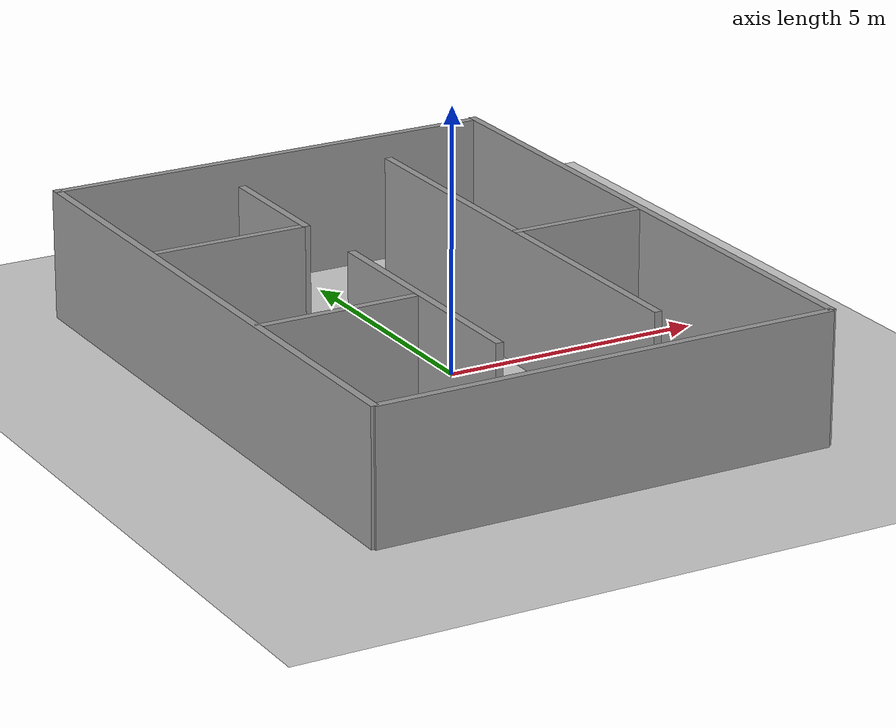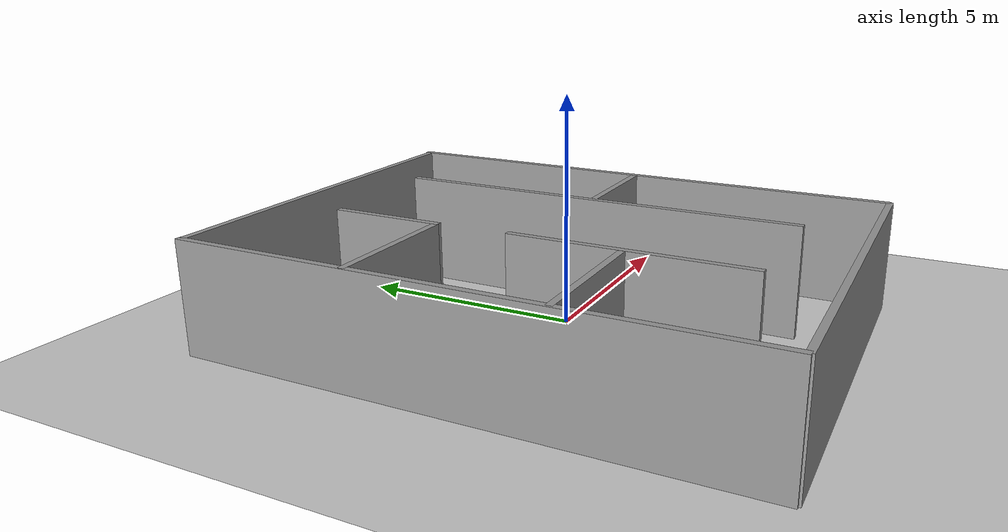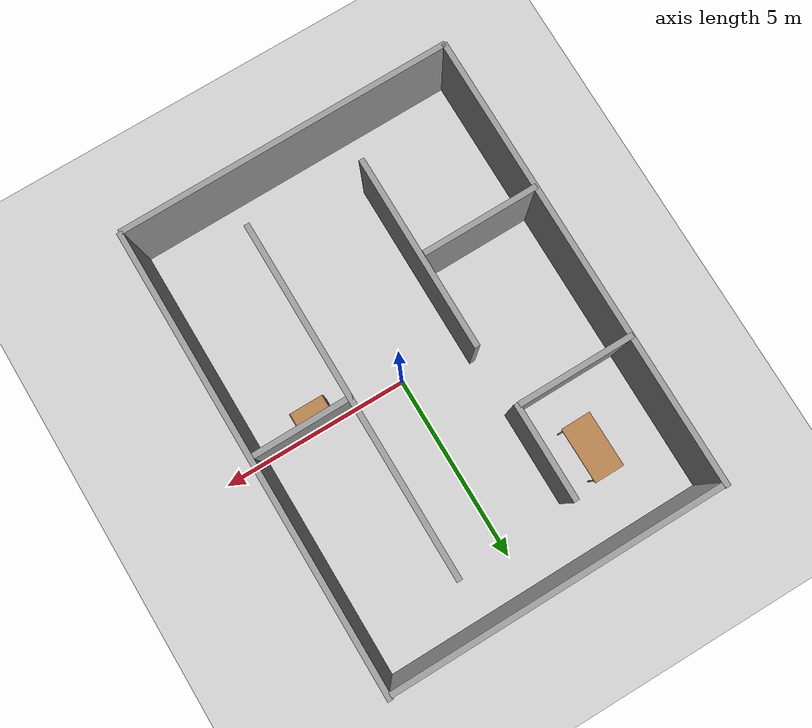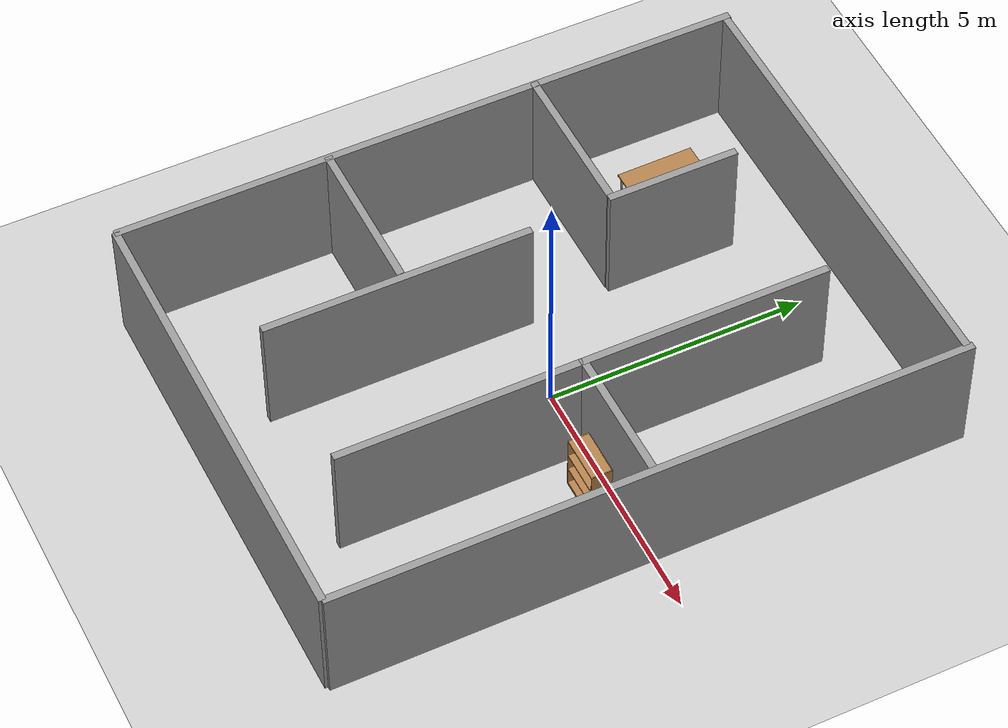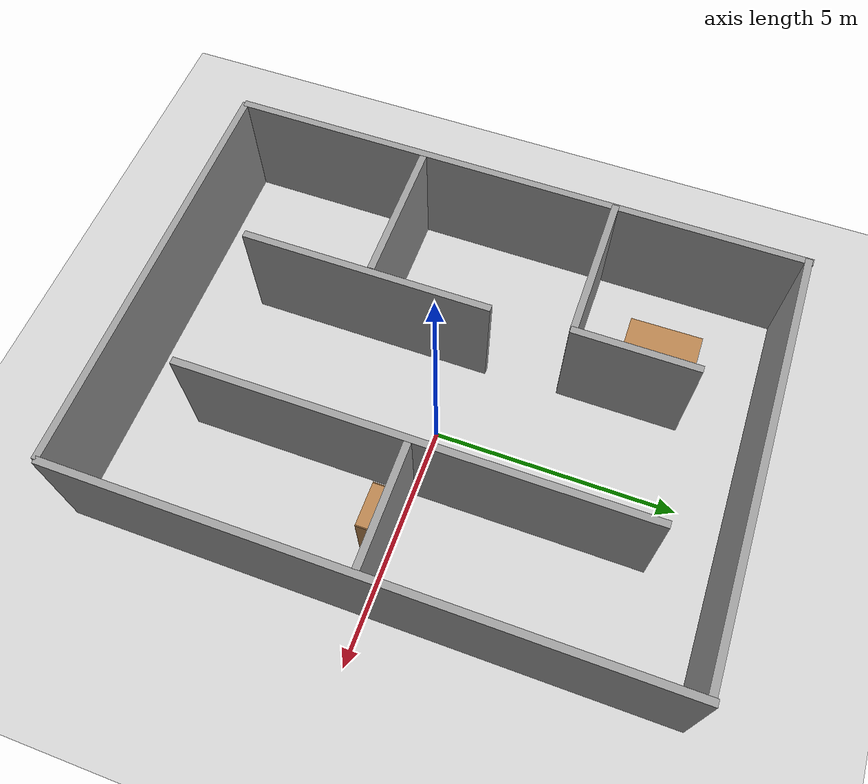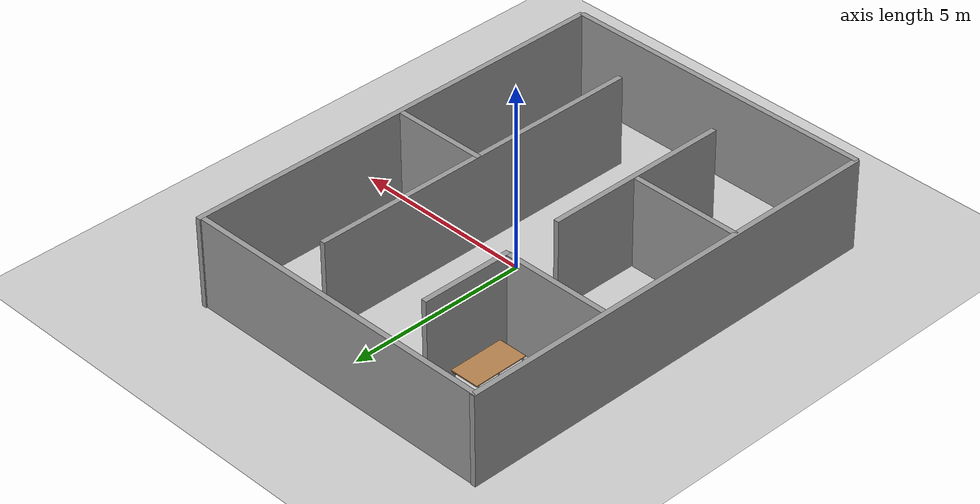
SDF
<sdf version="1.7">
 <world name="default">
  <light name="sun" type="directional">
   <pose>0 0 10 0 -0 0</pose>
   <diffuse>0.8 0.8 0.8 1</diffuse>
   <specular>0.2 0.2 0.2 1</specular>
   <attenuation>
    <range>1000</range>
    <constant>0.9</constant>
    <linear>0.01</linear>
    <quadratic>0.001</quadratic>
   </attenuation>
   <direction>-0.5 0.1 -0.9</direction>
   <spot><inner_angle>0</inner_angle><outer_angle>0</outer_angle><falloff>0</falloff></spot>
  </light>
  <model name="ground_plane">
   <static>1</static>
   <link name="link">
    <collision name="collision">
     <geometry><plane><normal>0 0 1</normal><size>100 100</size></plane></geometry>
     <surface>
      <contact><collide_bitmask>65535</collide_bitmask></contact>
      <friction><ode><mu>100</mu><mu2>50</mu2></ode></friction>
     </surface>
    </collision>
    <visual name="visual">
     <cast_shadows>0</cast_shadows>
     <geometry><plane><normal>0 0 1</normal><size>100 100</size></plane></geometry>
     <material>
      <script><uri>file://media/materials/scripts/gazebo.material</uri><name>Gazebo/Grey</name></script>
     </material>
    </visual>
   </link>
  </model>
  <gravity>0 0 -9.8</gravity>
  <magnetic_field>6e-06 2.3e-05 -4.2e-05</magnetic_field>
  <atmosphere type="adiabatic"/>
  <physics type="ode">
   <max_step_size>0.001</max_step_size>
   <real_time_factor>1</real_time_factor>
   <real_time_update_rate>1000</real_time_update_rate>
  </physics>
  <scene><ambient>0.4 0.4 0.4 1</ambient><background>0.7 0.7 0.7 1</background><shadows>1</shadows></scene>
  <spherical_coordinates>
   <surface_model>EARTH_WGS84</surface_model>
   <latitude_deg>0</latitude_deg>
   <longitude_deg>0</longitude_deg>
   <elevation>0</elevation>
   <heading_deg>0</heading_deg>
  </spherical_coordinates>
  <model name="building_with_room">
   <link name="link">
    <inertial>
     <mass>4.4494</mass>
     <inertia><ixx>57.3504</ixx><ixy>0</ixy><ixz>0</ixz><iyy>2.28295</iyy><iyz>0</iyz><izz>55.0835</izz></inertia>
    </inertial>
    <pose>1.60322 -0.623475 0.7452 0 -0 0</pose>
    <visual name="visual">
     <geometry><box><size>0.14733 12.1876 2.47697</size></box></geometry>
     <material>
      <script><name>Gazebo/Grey</name><uri>file://media/materials/scripts/gazebo.material</uri></script>
      <shader type="pixel"/>
     </material>
    </visual>
    <collision name="collision">
     <geometry><box><size>0.14733 12.1876 2.47697</size></box></geometry>
     <surface>
      <friction>
       <ode><mu>1</mu><mu2>1</mu2><fdir1>0 0 0</fdir1><slip1>0</slip1><slip2>0</slip2></ode>
       <torsional>
        <coefficient>1</coefficient>
        <patch_radius>0</patch_radius>
        <surface_radius>0</surface_radius>
        <use_patch_radius>1</use_patch_radius>
        <ode><slip>0</slip></ode>
       </torsional>
      </friction>
      <bounce><restitution_coefficient>0</restitution_coefficient><threshold>1e+06</threshold></bounce>
      <contact>
       <collide_without_contact>0</collide_without_contact>
       <collide_without_contact_bitmask>1</collide_without_contact_bitmask>
       <collide_bitmask>1</collide_bitmask>
       <ode>
        <soft_cfm>0</soft_cfm>
        <soft_erp>0.2</soft_erp>
        <kp>1e+13</kp>
        <kd>1</kd>
        <max_vel>0.01</max_vel>
        <min_depth>0</min_depth>
       </ode>
       <bullet>
        <split_impulse>1</split_impulse>
        <split_impulse_penetration_threshold>-0.01</split_impulse_penetration_threshold>
        <soft_cfm>0</soft_cfm>
        <soft_erp>0.2</soft_erp>
        <kp>1e+13</kp>
        <kd>1</kd>
       </bullet>
      </contact>
     </surface>
    </collision>
   </link>
   <link name="link_clone">
    <inertial>
     <mass>4.4494</mass>
     <inertia><ixx>57.3504</ixx><ixy>0</ixy><ixz>0</ixz><iyy>2.28295</iyy><iyz>0</iyz><izz>55.0835</izz></inertia>
    </inertial>
    <pose>-7.1934 -0.686715 0.7452 0 -0 0</pose>
    <visual name="visual">
     <geometry><box><size>0.14733 12.1876 2.47697</size></box></geometry>
     <material>
      <script><name>Gazebo/Grey</name><uri>file://media/materials/scripts/gazebo.material</uri></script>
      <shader type="pixel"/>
     </material>
    </visual>
    <collision name="collision">
     <geometry><box><size>0.14733 12.1876 2.47697</size></box></geometry>
     <surface>
      <friction>
       <ode><mu>1</mu><mu2>1</mu2><fdir1>0 0 0</fdir1><slip1>0</slip1><slip2>0</slip2></ode>
       <torsional>
        <coefficient>1</coefficient>
        <patch_radius>0</patch_radius>
        <surface_radius>0</surface_radius>
        <use_patch_radius>1</use_patch_radius>
        <ode><slip>0</slip></ode>
       </torsional>
      </friction>
      <bounce><restitution_coefficient>0</restitution_coefficient><threshold>1e+06</threshold></bounce>
      <contact>
       <collide_without_contact>0</collide_without_contact>
       <collide_without_contact_bitmask>1</collide_without_contact_bitmask>
       <collide_bitmask>1</collide_bitmask>
       <ode>
        <soft_cfm>0</soft_cfm>
        <soft_erp>0.2</soft_erp>
        <kp>1e+13</kp>
        <kd>1</kd>
        <max_vel>0.01</max_vel>
        <min_depth>0</min_depth>
       </ode>
       <bullet>
        <split_impulse>1</split_impulse>
        <split_impulse_penetration_threshold>-0.01</split_impulse_penetration_threshold>
        <soft_cfm>0</soft_cfm>
        <soft_erp>0.2</soft_erp>
        <kp>1e+13</kp>
        <kd>1</kd>
       </bullet>
      </contact>
     </surface>
    </collision>
   </link>
   <link name="link_clone_0">
    <inertial>
     <mass>3.21667</mass>
     <inertia><ixx>22.4546</ixx><ixy>0</ixy><ixz>0</ixz><iyy>1.65044</iyy><iyz>0</iyz><izz>20.8158</izz></inertia>
    </inertial>
    <pose>-2.84698 5.33919 0.7452 -0 -0 -1.5653</pose>
    <visual name="visual">
     <geometry><box><size>0.14733 8.81096 2.47697</size></box></geometry>
     <material>
      <script><name>Gazebo/Grey</name><uri>file://media/materials/scripts/gazebo.material</uri></script>
      <shader type="pixel"/>
     </material>
    </visual>
    <collision name="collision">
     <geometry><box><size>0.14733 8.81096 2.47697</size></box></geometry>
     <surface>
      <friction>
       <ode><mu>1</mu><mu2>1</mu2><fdir1>0 0 0</fdir1><slip1>0</slip1><slip2>0</slip2></ode>
       <torsional>
        <coefficient>1</coefficient>
        <patch_radius>0</patch_radius>
        <surface_radius>0</surface_radius>
        <use_patch_radius>1</use_patch_radius>
        <ode><slip>0</slip></ode>
       </torsional>
      </friction>
      <bounce><restitution_coefficient>0</restitution_coefficient><threshold>1e+06</threshold></bounce>
      <contact>
       <collide_without_contact>0</collide_without_contact>
       <collide_without_contact_bitmask>1</collide_without_contact_bitmask>
       <collide_bitmask>1</collide_bitmask>
       <ode>
        <soft_cfm>0</soft_cfm>
        <soft_erp>0.2</soft_erp>
        <kp>1e+13</kp>
        <kd>1</kd>
        <max_vel>0.01</max_vel>
        <min_depth>0</min_depth>
       </ode>
       <bullet>
        <split_impulse>1</split_impulse>
        <split_impulse_penetration_threshold>-0.01</split_impulse_penetration_threshold>
        <soft_cfm>0</soft_cfm>
        <soft_erp>0.2</soft_erp>
        <kp>1e+13</kp>
        <kd>1</kd>
       </bullet>
      </contact>
     </surface>
    </collision>
   </link>
   <link name="link_clone_0_clone">
    <inertial>
     <mass>3.21667</mass>
     <inertia><ixx>22.4546</ixx><ixy>0</ixy><ixz>0</ixz><iyy>1.65044</iyy><iyz>0</iyz><izz>20.8158</izz></inertia>
    </inertial>
    <pose>-2.80375 -6.72739 0.7452 -0 -0 -1.5653</pose>
    <visual name="visual">
     <geometry><box><size>0.14733 8.81096 2.47697</size></box></geometry>
     <material>
      <script><name>Gazebo/Grey</name><uri>file://media/materials/scripts/gazebo.material</uri></script>
      <shader type="pixel"/>
     </material>
    </visual>
    <collision name="collision">
     <geometry><box><size>0.14733 8.81096 2.47697</size></box></geometry>
     <surface>
      <friction>
       <ode><mu>1</mu><mu2>1</mu2><fdir1>0 0 0</fdir1><slip1>0</slip1><slip2>0</slip2></ode>
       <torsional>
        <coefficient>1</coefficient>
        <patch_radius>0</patch_radius>
        <surface_radius>0</surface_radius>
        <use_patch_radius>1</use_patch_radius>
        <ode><slip>0</slip></ode>
       </torsional>
      </friction>
      <bounce><restitution_coefficient>0</restitution_coefficient><threshold>1e+06</threshold></bounce>
      <contact>
       <collide_without_contact>0</collide_without_contact>
       <collide_without_contact_bitmask>1</collide_without_contact_bitmask>
       <collide_bitmask>1</collide_bitmask>
       <ode>
        <soft_cfm>0</soft_cfm>
        <soft_erp>0.2</soft_erp>
        <kp>1e+13</kp>
        <kd>1</kd>
        <max_vel>0.01</max_vel>
        <min_depth>0</min_depth>
       </ode>
       <bullet>
        <split_impulse>1</split_impulse>
        <split_impulse_penetration_threshold>-0.01</split_impulse_penetration_threshold>
        <soft_cfm>0</soft_cfm>
        <soft_erp>0.2</soft_erp>
        <kp>1e+13</kp>
        <kd>1</kd>
       </bullet>
      </contact>
     </surface>
    </collision>
   </link>
   <link name="link_clone_0_clone_0">
    <inertial>
     <mass>1.11906</mass>
     <inertia>
      <ixx>1.44837</ixx>
      <ixy>0</ixy>
      <ixz>0</ixz>
      <iyy>0.574178</iyy>
      <iyz>0</iyz>
      <izz>0.878239</izz>
     </inertia>
    </inertial>
    <pose>-5.70758 1.42749 0.7452 -0 -0 -1.5653</pose>
    <visual name="visual">
     <geometry><box><size>0.14733 3.06528 2.47697</size></box></geometry>
     <material>
      <script><name>Gazebo/Grey</name><uri>file://media/materials/scripts/gazebo.material</uri></script>
      <shader type="pixel"/>
     </material>
    </visual>
    <collision name="collision">
     <geometry><box><size>0.14733 3.06528 2.47697</size></box></geometry>
     <surface>
      <friction>
       <ode><mu>1</mu><mu2>1</mu2><fdir1>0 0 0</fdir1><slip1>0</slip1><slip2>0</slip2></ode>
       <torsional>
        <coefficient>1</coefficient>
        <patch_radius>0</patch_radius>
        <surface_radius>0</surface_radius>
        <use_patch_radius>1</use_patch_radius>
        <ode><slip>0</slip></ode>
       </torsional>
      </friction>
      <bounce><restitution_coefficient>0</restitution_coefficient><threshold>1e+06</threshold></bounce>
      <contact>
       <collide_without_contact>0</collide_without_contact>
       <collide_without_contact_bitmask>1</collide_without_contact_bitmask>
       <collide_bitmask>1</collide_bitmask>
       <ode>
        <soft_cfm>0</soft_cfm>
        <soft_erp>0.2</soft_erp>
        <kp>1e+13</kp>
        <kd>1</kd>
        <max_vel>0.01</max_vel>
        <min_depth>0</min_depth>
       </ode>
       <bullet>
        <split_impulse>1</split_impulse>
        <split_impulse_penetration_threshold>-0.01</split_impulse_penetration_threshold>
        <soft_cfm>0</soft_cfm>
        <soft_erp>0.2</soft_erp>
        <kp>1e+13</kp>
        <kd>1</kd>
       </bullet>
      </contact>
     </surface>
    </collision>
   </link>
   <link name="link_clone_0_clone_0_clone">
    <inertial>
     <mass>1.11906</mass>
     <inertia>
      <ixx>1.44837</ixx>
      <ixy>0</ixy>
      <ixz>0</ixz>
      <iyy>0.574178</iyy>
      <iyz>0</iyz>
      <izz>0.878239</izz>
     </inertia>
    </inertial>
    <pose>-5.68036 -2.66691 0.7452 -0 -0 -1.5653</pose>
    <visual name="visual">
     <geometry><box><size>0.14733 3.06528 2.47697</size></box></geometry>
     <material>
      <script><name>Gazebo/Grey</name><uri>file://media/materials/scripts/gazebo.material</uri></script>
      <shader type="pixel"/>
     </material>
    </visual>
    <collision name="collision">
     <geometry><box><size>0.14733 3.06528 2.47697</size></box></geometry>
     <surface>
      <friction>
       <ode><mu>1</mu><mu2>1</mu2><fdir1>0 0 0</fdir1><slip1>0</slip1><slip2>0</slip2></ode>
       <torsional>
        <coefficient>1</coefficient>
        <patch_radius>0</patch_radius>
        <surface_radius>0</surface_radius>
        <use_patch_radius>1</use_patch_radius>
        <ode><slip>0</slip></ode>
       </torsional>
      </friction>
      <bounce><restitution_coefficient>0</restitution_coefficient><threshold>1e+06</threshold></bounce>
      <contact>
       <collide_without_contact>0</collide_without_contact>
       <collide_without_contact_bitmask>1</collide_without_contact_bitmask>
       <collide_bitmask>1</collide_bitmask>
       <ode>
        <soft_cfm>0</soft_cfm>
        <soft_erp>0.2</soft_erp>
        <kp>1e+13</kp>
        <kd>1</kd>
        <max_vel>0.01</max_vel>
        <min_depth>0</min_depth>
       </ode>
       <bullet>
        <split_impulse>1</split_impulse>
        <split_impulse_penetration_threshold>-0.01</split_impulse_penetration_threshold>
        <soft_cfm>0</soft_cfm>
        <soft_erp>0.2</soft_erp>
        <kp>1e+13</kp>
        <kd>1</kd>
       </bullet>
      </contact>
     </surface>
    </collision>
   </link>
   <link name="link_clone_0_clone_0_clone_0">
    <inertial>
     <mass>0.951816</mass>
     <inertia><ixx>1.0258</ixx><ixy>0</ixy><ixz>0</ixz><iyy>0.488368</iyy><iyz>0</iyz><izz>0.540874</izz></inertia>
    </inertial>
    <pose>0.232008 -0.66673 0.7452 -0 -0 -1.5653</pose>
    <visual name="visual">
     <geometry><box><size>0.14733 2.60717 2.47697</size></box></geometry>
     <material>
      <script><name>Gazebo/Grey</name><uri>file://media/materials/scripts/gazebo.material</uri></script>
      <shader type="pixel"/>
     </material>
    </visual>
    <collision name="collision">
     <geometry><box><size>0.14733 2.60717 2.47697</size></box></geometry>
     <surface>
      <friction>
       <ode><mu>1</mu><mu2>1</mu2><fdir1>0 0 0</fdir1><slip1>0</slip1><slip2>0</slip2></ode>
       <torsional>
        <coefficient>1</coefficient>
        <patch_radius>0</patch_radius>
        <surface_radius>0</surface_radius>
        <use_patch_radius>1</use_patch_radius>
        <ode><slip>0</slip></ode>
       </torsional>
      </friction>
      <bounce><restitution_coefficient>0</restitution_coefficient><threshold>1e+06</threshold></bounce>
      <contact>
       <collide_without_contact>0</collide_without_contact>
       <collide_without_contact_bitmask>1</collide_without_contact_bitmask>
       <collide_bitmask>1</collide_bitmask>
       <ode>
        <soft_cfm>0</soft_cfm>
        <soft_erp>0.2</soft_erp>
        <kp>1e+13</kp>
        <kd>1</kd>
        <max_vel>0.01</max_vel>
        <min_depth>0</min_depth>
       </ode>
       <bullet>
        <split_impulse>1</split_impulse>
        <split_impulse_penetration_threshold>-0.01</split_impulse_penetration_threshold>
        <soft_cfm>0</soft_cfm>
        <soft_erp>0.2</soft_erp>
        <kp>1e+13</kp>
        <kd>1</kd>
       </bullet>
      </contact>
     </surface>
    </collision>
   </link>
   <link name="link_clone_1">
    <inertial>
     <mass>3.44638</mass>
     <inertia><ixx>27.3563</ixx><ixy>0</ixy><ixz>0</ixz><iyy>1.76831</iyy><iyz>0</iyz><izz>25.6004</izz></inertia>
    </inertial>
    <pose>-1.00353 -0.645568 0.7452 0 -0 0</pose>
    <visual name="visual">
     <geometry><box><size>0.14733 9.44017 2.47697</size></box></geometry>
     <material>
      <script><name>Gazebo/Grey</name><uri>file://media/materials/scripts/gazebo.material</uri></script>
      <shader type="pixel"/>
     </material>
    </visual>
    <collision name="collision">
     <geometry><box><size>0.14733 9.44017 2.47697</size></box></geometry>
     <surface>
      <friction>
       <ode><mu>1</mu><mu2>1</mu2><fdir1>0 0 0</fdir1><slip1>0</slip1><slip2>0</slip2></ode>
       <torsional>
        <coefficient>1</coefficient>
        <patch_radius>0</patch_radius>
        <surface_radius>0</surface_radius>
        <use_patch_radius>1</use_patch_radius>
        <ode><slip>0</slip></ode>
       </torsional>
      </friction>
      <bounce><restitution_coefficient>0</restitution_coefficient><threshold>1e+06</threshold></bounce>
      <contact>
       <collide_without_contact>0</collide_without_contact>
       <collide_without_contact_bitmask>1</collide_without_contact_bitmask>
       <collide_bitmask>1</collide_bitmask>
       <ode>
        <soft_cfm>0</soft_cfm>
        <soft_erp>0.2</soft_erp>
        <kp>1e+13</kp>
        <kd>1</kd>
        <max_vel>0.01</max_vel>
        <min_depth>0</min_depth>
       </ode>
       <bullet>
        <split_impulse>1</split_impulse>
        <split_impulse_penetration_threshold>-0.01</split_impulse_penetration_threshold>
        <soft_cfm>0</soft_cfm>
        <soft_erp>0.2</soft_erp>
        <kp>1e+13</kp>
        <kd>1</kd>
       </bullet>
      </contact>
     </surface>
    </collision>
   </link>
   <link name="link_clone_2">
    <inertial>
     <mass>1.88613</mass>
     <inertia><ixx>5.1597</ixx><ixy>0</ixy><ixz>0</ixz><iyy>0.967758</iyy><iyz>0</iyz><izz>4.19877</izz></inertia>
    </inertial>
    <pose>-4.06648 -2.75169 0.7452 0 -0 0</pose>
    <visual name="visual">
     <geometry><box><size>0.14733 5.16641 2.47697</size></box></geometry>
     <material>
      <script><name>Gazebo/Grey</name><uri>file://media/materials/scripts/gazebo.material</uri></script>
      <shader type="pixel"/>
     </material>
    </visual>
    <collision name="collision">
     <geometry><box><size>0.14733 5.16641 2.47697</size></box></geometry>
     <surface>
      <friction>
       <ode><mu>1</mu><mu2>1</mu2><fdir1>0 0 0</fdir1><slip1>0</slip1><slip2>0</slip2></ode>
       <torsional>
        <coefficient>1</coefficient>
        <patch_radius>0</patch_radius>
        <surface_radius>0</surface_radius>
        <use_patch_radius>1</use_patch_radius>
        <ode><slip>0</slip></ode>
       </torsional>
      </friction>
      <bounce><restitution_coefficient>0</restitution_coefficient><threshold>1e+06</threshold></bounce>
      <contact>
       <collide_without_contact>0</collide_without_contact>
       <collide_without_contact_bitmask>1</collide_without_contact_bitmask>
       <collide_bitmask>1</collide_bitmask>
       <ode>
        <soft_cfm>0</soft_cfm>
        <soft_erp>0.2</soft_erp>
        <kp>1e+13</kp>
        <kd>1</kd>
        <max_vel>0.01</max_vel>
        <min_depth>0</min_depth>
       </ode>
       <bullet>
        <split_impulse>1</split_impulse>
        <split_impulse_penetration_threshold>-0.01</split_impulse_penetration_threshold>
        <soft_cfm>0</soft_cfm>
        <soft_erp>0.2</soft_erp>
        <kp>1e+13</kp>
        <kd>1</kd>
       </bullet>
      </contact>
     </surface>
    </collision>
   </link>
   <link name="link_clone_3">
    <inertial>
     <mass>0.931837</mass>
     <inertia>
      <ixx>0.982341</ixx>
      <ixy>0</ixy>
      <ixz>0</ixz>
      <iyy>0.478117</iyy>
      <iyz>0</iyz>
      <izz>0.507595</izz>
     </inertia>
    </inertial>
    <pose>-4.13915 2.65366 0.7452 0 -0 0</pose>
    <visual name="visual">
     <geometry><box><size>0.14733 2.55245 2.47697</size></box></geometry>
     <material>
      <script><name>Gazebo/Grey</name><uri>file://media/materials/scripts/gazebo.material</uri></script>
      <shader type="pixel"/>
     </material>
    </visual>
    <collision name="collision">
     <geometry><box><size>0.14733 2.55245 2.47697</size></box></geometry>
     <surface>
      <friction>
       <ode><mu>1</mu><mu2>1</mu2><fdir1>0 0 0</fdir1><slip1>0</slip1><slip2>0</slip2></ode>
       <torsional>
        <coefficient>1</coefficient>
        <patch_radius>0</patch_radius>
        <surface_radius>0</surface_radius>
        <use_patch_radius>1</use_patch_radius>
        <ode><slip>0</slip></ode>
       </torsional>
      </friction>
      <bounce><restitution_coefficient>0</restitution_coefficient><threshold>1e+06</threshold></bounce>
      <contact>
       <collide_without_contact>0</collide_without_contact>
       <collide_without_contact_bitmask>1</collide_without_contact_bitmask>
       <collide_bitmask>1</collide_bitmask>
       <ode>
        <soft_cfm>0</soft_cfm>
        <soft_erp>0.2</soft_erp>
        <kp>1e+13</kp>
        <kd>1</kd>
        <max_vel>0.01</max_vel>
        <min_depth>0</min_depth>
       </ode>
       <bullet>
        <split_impulse>1</split_impulse>
        <split_impulse_penetration_threshold>-0.01</split_impulse_penetration_threshold>
        <soft_cfm>0</soft_cfm>
        <soft_erp>0.2</soft_erp>
        <kp>1e+13</kp>
        <kd>1</kd>
       </bullet>
      </contact>
     </surface>
    </collision>
   </link>
   <static>0</static>
   <pose>2.3139 0.64761 0.5 0 -0 0</pose>
  </model>
  <model name="table">
   <static>1</static>
   <link name="link">
    <collision name="surface">
     <pose>0 0 1 0 -0 0</pose>
     <geometry><box><size>1.5 0.8 0.03</size></box></geometry>
     <surface><friction><ode><mu>0.6</mu><mu2>0.6</mu2></ode></friction></surface>
    </collision>
    <visual name="visual1">
     <pose>0 0 1 0 -0 0</pose>
     <geometry><box><size>1.5 0.8 0.03</size></box></geometry>
     <material>
      <script><uri>file://media/materials/scripts/gazebo.material</uri><name>Gazebo/Wood</name></script>
     </material>
    </visual>
    <collision name="front_left_leg">
     <pose>0.68 0.38 0.5 0 -0 0</pose>
     <geometry><cylinder><radius>0.02</radius><length>1</length></cylinder></geometry>
    </collision>
    <visual name="front_left_leg">
     <pose>0.68 0.38 0.5 0 -0 0</pose>
     <geometry><cylinder><radius>0.02</radius><length>1</length></cylinder></geometry>
     <material>
      <script><uri>file://media/materials/scripts/gazebo.material</uri><name>Gazebo/Grey</name></script>
     </material>
    </visual>
    <collision name="front_right_leg">
     <pose>0.68 -0.38 0.5 0 -0 0</pose>
     <geometry><cylinder><radius>0.02</radius><length>1</length></cylinder></geometry>
    </collision>
    <visual name="front_right_leg">
     <pose>0.68 -0.38 0.5 0 -0 0</pose>
     <geometry><cylinder><radius>0.02</radius><length>1</length></cylinder></geometry>
     <material>
      <script><uri>file://media/materials/scripts/gazebo.material</uri><name>Gazebo/Grey</name></script>
     </material>
    </visual>
    <collision name="back_right_leg">
     <pose>-0.68 -0.38 0.5 0 -0 0</pose>
     <geometry><cylinder><radius>0.02</radius><length>1</length></cylinder></geometry>
    </collision>
    <visual name="back_right_leg">
     <pose>-0.68 -0.38 0.5 0 -0 0</pose>
     <geometry><cylinder><radius>0.02</radius><length>1</length></cylinder></geometry>
     <material>
      <script><uri>file://media/materials/scripts/gazebo.material</uri><name>Gazebo/Grey</name></script>
     </material>
    </visual>
    <collision name="back_left_leg">
     <pose>-0.68 0.38 0.5 0 -0 0</pose>
     <geometry><cylinder><radius>0.02</radius><length>1</length></cylinder></geometry>
    </collision>
    <visual name="back_left_leg">
     <pose>-0.68 0.38 0.5 0 -0 0</pose>
     <geometry><cylinder><radius>0.02</radius><length>1</length></cylinder></geometry>
     <material>
      <script><uri>file://media/materials/scripts/gazebo.material</uri><name>Gazebo/Grey</name></script>
     </material>
    </visual>
   </link>
   <pose>-3.01738 3.79399 0 0 0 -1.56051</pose>
  </model>
  <model name="bookshelf">
   <static>1</static>
   <link name="link">
    <inertial><mass>1</mass></inertial>
    <collision name="back">
     <pose>0 0.005 0.6 0 -0 0</pose>
     <geometry><box><size>0.9 0.01 1.2</size></box></geometry>
    </collision>
    <visual name="visual1">
     <pose>0 0.005 0.6 0 -0 0</pose>
     <geometry><box><size>0.9 0.01 1.2</size></box></geometry>
     <material>
      <script><uri>file://media/materials/scripts/gazebo.material</uri><name>Gazebo/Wood</name></script>
     </material>
    </visual>
    <collision name="left_side">
     <pose>0.45 -0.195 0.6 0 -0 0</pose>
     <geometry><box><size>0.02 0.4 1.2</size></box></geometry>
    </collision>
    <visual name="visual2">
     <pose>0.45 -0.195 0.6 0 -0 0</pose>
     <geometry><box><size>0.02 0.4 1.2</size></box></geometry>
     <material>
      <script><uri>file://media/materials/scripts/gazebo.material</uri><name>Gazebo/Wood</name></script>
     </material>
    </visual>
    <collision name="right_side">
     <pose>-0.45 -0.195 0.6 0 -0 0</pose>
     <geometry><box><size>0.02 0.4 1.2</size></box></geometry>
    </collision>
    <visual name="visual3">
     <pose>-0.45 -0.195 0.6 0 -0 0</pose>
     <geometry><box><size>0.02 0.4 1.2</size></box></geometry>
     <material>
      <script><uri>file://media/materials/scripts/gazebo.material</uri><name>Gazebo/Wood</name></script>
     </material>
    </visual>
    <collision name="bottom">
     <pose>0 -0.195 0.03 0 -0 0</pose>
     <geometry><box><size>0.88 0.4 0.06</size></box></geometry>
    </collision>
    <visual name="visual4">
     <pose>0 -0.195 0.03 0 -0 0</pose>
     <geometry><box><size>0.88 0.4 0.06</size></box></geometry>
     <material>
      <script><uri>file://media/materials/scripts/gazebo.material</uri><name>Gazebo/Wood</name></script>
     </material>
    </visual>
    <collision name="top">
     <pose>0 -0.195 1.19 0 -0 0</pose>
     <geometry><box><size>0.88 0.4 0.02</size></box></geometry>
    </collision>
    <visual name="visual5">
     <pose>0 -0.195 1.19 0 -0 0</pose>
     <geometry><box><size>0.88 0.4 0.02</size></box></geometry>
     <material>
      <script><uri>file://media/materials/scripts/gazebo.material</uri><name>Gazebo/Wood</name></script>
     </material>
    </visual>
    <collision name="low_shelf">
     <pose>0 -0.195 0.43 0 -0 0</pose>
     <geometry><box><size>0.88 0.4 0.02</size></box></geometry>
    </collision>
    <visual name="visual6">
     <pose>0 -0.195 0.43 0 -0 0</pose>
     <geometry><box><size>0.88 0.4 0.02</size></box></geometry>
     <material>
      <script><uri>file://media/materials/scripts/gazebo.material</uri><name>Gazebo/Wood</name></script>
     </material>
    </visual>
    <collision name="high_shelf">
     <pose>0 -0.195 0.8 0 -0 0</pose>
     <geometry><box><size>0.88 0.4 0.02</size></box></geometry>
    </collision>
    <visual name="visual7">
     <pose>0 -0.195 0.8 0 -0 0</pose>
     <geometry><box><size>0.88 0.4 0.02</size></box></geometry>
     <material>
      <script><uri>file://media/materials/scripts/gazebo.material</uri><name>Gazebo/Wood</name></script>
     </material>
    </visual>
   </link>
   <pose>2.29311 -0.191631 0 0 -0 0</pose>
  </model>
 </world>
</sdf>
